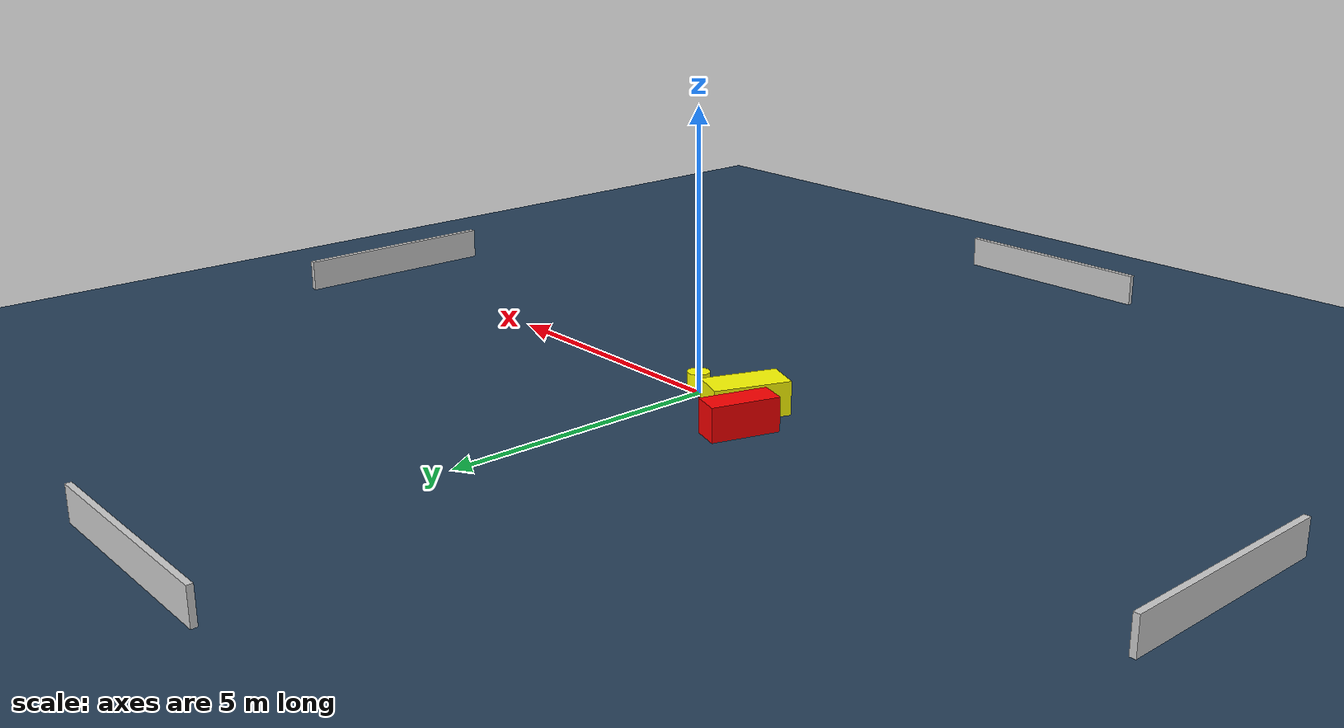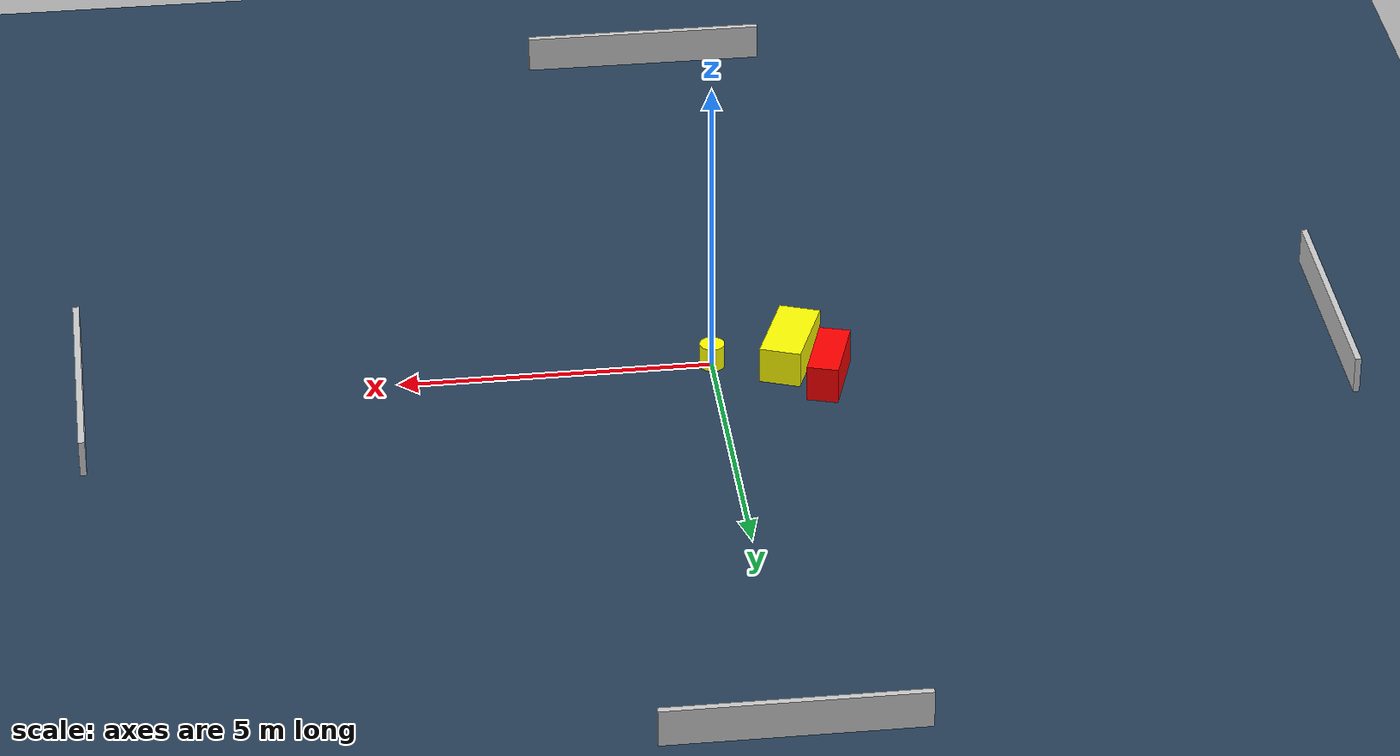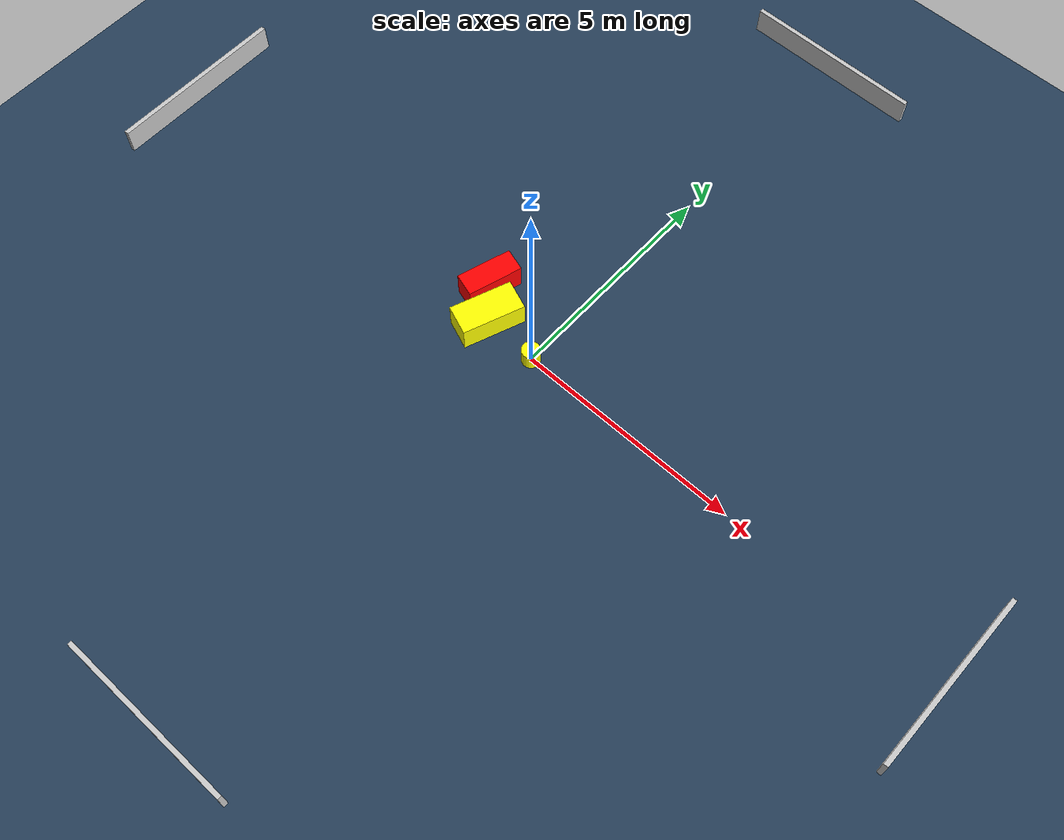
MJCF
<?xml version="1.0" ?>
<mujoco model="generated_environment">
  <option timestep="0.01" integrator="RK4" cone="elliptic"/>
  <default>
    <geom density="1"/>
  </default>
  <asset>
    <texture builtin="gradient" height="3072" name="skybox" rgb1="0.3 0.5 0.7" rgb2="0 0 0" type="skybox" width="512"/>
    <texture builtin="checker" height="300" name="groundplane" rgb1="0.2 0.3 0.4" rgb2="0.1 0.2 0.3" type="2d" width="300"/>
    <material name="groundplane" reflectance="0.2" texrepeat="5 5" texture="groundplane"/>
  </asset>
  <worldbody>
    <light dir="0 0 -1" directional="true" pos="0 0 1.5"/>
    <geom condim="3" friction="0.5 0.005 0.001" material="groundplane" name="floor" pos="0 0 0" size="0 0 0.05" type="plane"/>
    <body name="walls">
      <geom name="wall_1" condim="4" pos="-10.0 0.0 0.3" rgba="0.800000011920929 0.800000011920929 0.800000011920929 1.0" size="0.05 2.0 0.3" type="box"/>
      <geom name="wall_2" condim="4" pos="10.0 0.0 0.3" rgba="0.800000011920929 0.800000011920929 0.800000011920929 1.0" size="0.05 2.0 0.3" type="box"/>
      <geom name="wall_3" condim="4" pos="0.0 -10.0 0.3" rgba="0.800000011920929 0.800000011920929 0.800000011920929 1.0" size="2.0 0.05 0.3" type="box"/>
      <geom name="wall_4" condim="4" pos="0.0 10.0 0.3" rgba="0.800000011920929 0.800000011920929 0.800000011920929 1.0" size="2.0 0.05 0.3" type="box"/>
    </body>
    <body name="robot">
      <joint name="joint_x" type="slide" pos="0 0 0" axis="1 0 0"/>
      <joint name="joint_y" type="slide" pos="0 0 0" axis="0 1 0"/>
      <geom name="robot" type="cylinder" pos="0.0 0.0 0.2" size="0.2 0.2 0.0" mass="5.0" friction="1.0 0.005 0.0001" condim="4" rgba="1.0 1.0 0.0 1.0"/>
    </body>
    <body name="obstacle_1_movable">
      <geom name="obstacle_1_movable" condim="4" pos="-1.2402287801049348 0.05240201986591404 0.3" euler="0 0 249.0156888031084" friction="0.0 0.005 0.001" rgba="1.0 1.0 0.0 1.0" size="0.6816608132118215 0.3307710488241161 0.3" type="box" mass="0.1"/>
      <joint type="free"/>
    </body>
    <body name="obstacle_2_static">
      <geom name="obstacle_2_static" condim="4" pos="-1.7719004558089355 0.6902195644618184 0.3" euler="0 0 72.93871105523519" friction="0.0 0.005 0.001" rgba="1.0 0.0 0.0 1.0" size="0.6062748743491824 0.25116102986512046 0.3" type="box"/>
    </body>
  </worldbody>
  <actuator>
    <motor name="actuator_x" joint="joint_x" gear="1" ctrlrange="-1 1"/>
    <motor name="actuator_y" joint="joint_y" gear="1" ctrlrange="-1 1"/>
  </actuator>
</mujoco>
